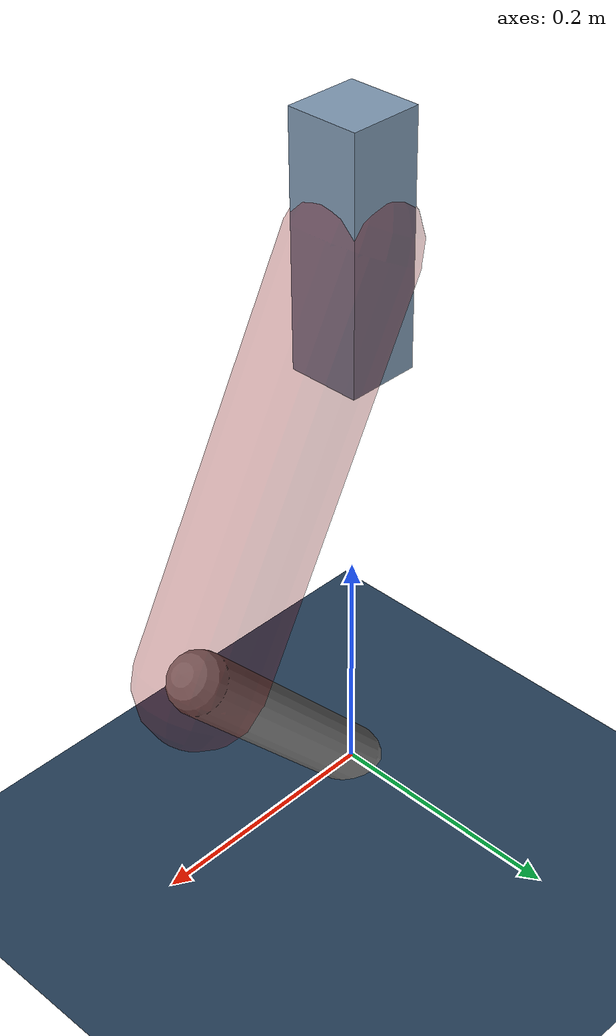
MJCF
<mujoco model="Hopper2D">
	<compiler inertiafromgeom="true" angle="radian" />
	<option timestep="0.001" integrator="implicit" cone="elliptic" solver="Newton" tolerance="1e-10" />

	<default>
		<geom contype="1" conaffinity="1" condim="3" friction="2 0.005 0.0001" solref="0.005 1" />
		<joint limited="true" damping="0.1" />
	</default>

	<asset>
		<texture name="skybox" type="skybox" builtin="gradient" rgb1=".4 .6 .8" rgb2="0 0 0" width="800" height="800" />
		<texture name="grid" type="2d" builtin="checker" rgb1=".1 .2 .3" rgb2=".2 .3 .4" width="300" height="300" mark="edge" markrgb=".2 .3 .4" />
		<material name="ground" texture="grid" texrepeat="1 1" texuniform="true" reflectance="0.1" />
		<material name="leg" rgba="0.5 0.6 0.7 1" />
	</asset>

	<worldbody>

		<geom name="floor" type="plane" size="5 5 0.25" material="ground" />

		<light directional="false" diffuse="0.8 0.8 0.8" specular="0.3 0.3 0.3" pos="0 0 2" dir="0 0 -1" />
		<light mode="targetbodycom" target="base" directional="false" diffuse="0.8 0.8 0.8" specular="0.3 0.3 0.3" pos="0 0 2" dir="0 0 -1" />

		<camera name="fixed" pos="0 -2 1" xyaxes="1 0 0 0 0 1" />
		<camera name="tracking" mode="trackcom" pos="0 -3 1" />

		<body name="root" pos="0 0 0.47785253241522774">
			<joint name="slide_x" type="slide" axis="1 0 0" range="-100 100" />
			<joint name="slide_z" type="slide" axis="0 0 1" range="0 10" />

			<body name="base" pos="0 0 0">
				<geom name="torso" type="box" size="0.03 0.03 0.1" mass="1.8010000000000002" material="leg" />

				<body name="link1" pos="0 0 0" euler="0 1.0750705939777099 0">
					<joint type="hinge" axis="0 -1 0" pos="0 0 0" name="hinge1" limited="true" range="-3.14 3.14" stiffness="0" damping="0.1" />
					<geom name="thigh" type="capsule" fromto="0 0 0 0.3369381801144348 0 0" size="0.05" rgba="0.5 0 0 0.3" mass="1.0901269043204176" />

					<body name="link2" pos="0.3369381801144348 0 0" euler="0 1.2191621145258706 0">
						<joint type="hinge" axis="0 -1 0" pos="0 0 0" name="hinge2" limited="true" range="-3.14 3.14" stiffness="0" damping="0.1" />
						<geom name="shank" type="capsule" fromto="0 0 0 0.24211493361263947 0 0" size="0.025" mass="0.4359919468901116" />

					</body>
				</body>
			</body>
		</body>
	</worldbody>

	<actuator>
		<motor name="torque1" joint="hinge1" ctrlrange="-62.84988104202194 62.84988104202194" ctrllimited="true" gear="1" />
		<motor name="torque2" joint="hinge2" ctrlrange="-15.657909520162349 15.657909520162349" ctrllimited="true" gear="1" />
	</actuator>
</mujoco>
